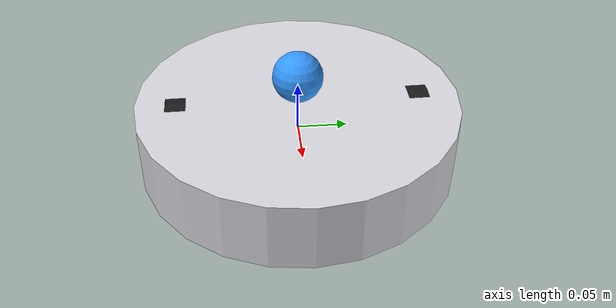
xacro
<?xml version="1.0"?>
<robot xmlns:xacro="http://www.ros.org/wiki/xacro" name="robot_a">
  <xacro:include filename="common_robot.xacro"/>

  <xacro:arg name="prefix" default="robot_a_"/>
  <xacro:property name="prefix" value="$(arg prefix)"/>

  <xacro:roomba_base prefix="${prefix}" chassis_rgba="0.85 0.85 0.88 1"/>

  <!-- Visual marker on top; trash items are red cubes from models/trash. -->
  <link name="${prefix}dropper_link">
    <xacro:sphere_inertial m="0.01" r="0.025"/>
    <visual>
      <geometry><sphere radius="0.025"/></geometry>
      <material name="${prefix}dropper_mat"><color rgba="0.2 0.6 1.0 1"/></material>
    </visual>
  </link>
  <joint name="${prefix}dropper_joint" type="fixed">
    <parent link="${prefix}base_link"/>
    <child link="${prefix}dropper_link"/>
    <origin xyz="0 0 0.06" rpy="0 0 0"/>
  </joint>

  <!-- planar_move: sets model velocity in the plane (wheel friction not required for motion). -->
  <gazebo>
    <plugin name="planar_move_a" filename="libgazebo_ros_planar_move.so">
      <ros>
        <namespace>/robot_a</namespace>
        <qos>
          <topic name="cmd_vel">
            <subscription>
              <reliability>reliable</reliability>
              <history depth="10">keep_last</history>
            </subscription>
          </topic>
        </qos>
      </ros>
      <update_rate>100</update_rate>
      <publish_rate>50</publish_rate>
      <publish_odom>true</publish_odom>
      <publish_odom_tf>true</publish_odom_tf>
      <odometry_frame>robot_a_odom</odometry_frame>
      <robot_base_frame>${prefix}base_link</robot_base_frame>
    </plugin>

    <plugin name="jsp_a" filename="libgazebo_ros_joint_state_publisher.so">
      <ros>
        <namespace>/robot_a</namespace>
        <remapping>~/joint_states:=/robot_a/joint_states</remapping>
      </ros>
      <joint_name>${prefix}left_wheel_joint</joint_name>
      <joint_name>${prefix}right_wheel_joint</joint_name>
      <update_rate>50</update_rate>
    </plugin>
  </gazebo>
</robot>

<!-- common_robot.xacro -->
<robot xmlns:xacro="http://www.ros.org/wiki/xacro">
  <!--
    Common differential-drive base: cylindrical chassis, two driven wheels, one caster.
    Args:
      prefix: unique link/joint prefix, e.g. robot_a_
      chassis_rgba: visual color
  -->
  <xacro:property name="chassis_radius" value="0.16"/>
  <xacro:property name="chassis_height" value="0.07"/>
  <!-- Higher mass reduces "coin on edge" tipping in ODE. -->
  <xacro:property name="chassis_mass" value="4.5"/>
  <xacro:property name="wheel_radius" value="0.036"/>
  <xacro:property name="wheel_width" value="0.02"/>
  <xacro:property name="wheel_mass" value="0.08"/>
  <xacro:property name="wheel_sep" value="0.24"/>
  <xacro:property name="caster_radius" value="0.018"/>
  <xacro:property name="caster_mass" value="0.02"/>

  <xacro:macro name="cylinder_inertial" params="m r h">
    <inertial>
      <mass value="${m}"/>
      <inertia ixx="${m * (3*r*r + h*h) / 12}" ixy="0.0" ixz="0.0"
               iyy="${m * (3*r*r + h*h) / 12}" iyz="0.0"
               izz="${m * r*r / 2}"/>
    </inertial>
  </xacro:macro>

  <xacro:macro name="wheel_inertial" params="m r h">
    <inertial>
      <mass value="${m}"/>
      <inertia ixx="${m * (3*r*r + h*h) / 12}" ixy="0.0" ixz="0.0"
               iyy="${m * (3*r*r + h*h) / 12}" iyz="0.0"
               izz="${m * r*r / 2}"/>
    </inertial>
  </xacro:macro>

  <xacro:macro name="sphere_inertial" params="m r">
    <inertial>
      <mass value="${m}"/>
      <inertia ixx="${0.4*m*r*r}" ixy="0.0" ixz="0.0"
               iyy="${0.4*m*r*r}" iyz="0.0"
               izz="${0.4*m*r*r}"/>
    </inertial>
  </xacro:macro>

  <xacro:macro name="roomba_base" params="prefix chassis_rgba">
    <link name="${prefix}base_link">
      <xacro:cylinder_inertial m="${chassis_mass}" r="${chassis_radius}" h="${chassis_height}"/>
      <visual>
        <origin xyz="0 0 0" rpy="0 0 0"/>
        <geometry>
          <cylinder length="${chassis_height}" radius="${chassis_radius}"/>
        </geometry>
        <material name="${prefix}chassis_mat">
          <color rgba="${chassis_rgba}"/>
        </material>
      </visual>
      <collision>
        <origin xyz="0 0 0" rpy="0 0 0"/>
        <geometry>
          <cylinder length="${chassis_height}" radius="${chassis_radius}"/>
        </geometry>
      </collision>
    </link>

    <!-- Wheels: same convention as libgazebo_ros_diff_drive demo (spin axis matches plugin). -->
    <link name="${prefix}left_wheel_link">
      <xacro:wheel_inertial m="${wheel_mass}" r="${wheel_radius}" h="${wheel_width}"/>
      <visual>
        <origin xyz="0 0 0" rpy="0 0 0"/>
        <geometry>
          <cylinder length="${wheel_width}" radius="${wheel_radius}"/>
        </geometry>
        <material name="${prefix}wheel_mat"><color rgba="0.1 0.1 0.1 1"/></material>
      </visual>
      <collision>
        <origin xyz="0 0 0" rpy="0 0 0"/>
        <geometry>
          <cylinder length="${wheel_width}" radius="${wheel_radius}"/>
        </geometry>
      </collision>
    </link>

    <link name="${prefix}right_wheel_link">
      <xacro:wheel_inertial m="${wheel_mass}" r="${wheel_radius}" h="${wheel_width}"/>
      <visual>
        <origin xyz="0 0 0" rpy="0 0 0"/>
        <geometry>
          <cylinder length="${wheel_width}" radius="${wheel_radius}"/>
        </geometry>
        <material name="${prefix}wheel_mat2"><color rgba="0.1 0.1 0.1 1"/></material>
      </visual>
      <collision>
        <origin xyz="0 0 0" rpy="0 0 0"/>
        <geometry>
          <cylinder length="${wheel_width}" radius="${wheel_radius}"/>
        </geometry>
      </collision>
    </link>

    <link name="${prefix}caster_link">
      <xacro:sphere_inertial m="${caster_mass}" r="${caster_radius}"/>
      <visual>
        <geometry>
          <sphere radius="${caster_radius}"/>
        </geometry>
        <material name="${prefix}caster_mat"><color rgba="0.3 0.3 0.3 1"/></material>
      </visual>
      <collision>
        <geometry>
          <sphere radius="${caster_radius}"/>
        </geometry>
      </collision>
    </link>

    <joint name="${prefix}left_wheel_joint" type="continuous">
      <parent link="${prefix}base_link"/>
      <child link="${prefix}left_wheel_link"/>
      <origin xyz="0 ${wheel_sep/2} ${-chassis_height/2 + wheel_radius}" rpy="-1.57079632679 0 0"/>
      <axis xyz="0 0 1"/>
      <dynamics damping="0.02" friction="0.05"/>
    </joint>

    <joint name="${prefix}right_wheel_joint" type="continuous">
      <parent link="${prefix}base_link"/>
      <child link="${prefix}right_wheel_link"/>
      <origin xyz="0 ${-wheel_sep/2} ${-chassis_height/2 + wheel_radius}" rpy="-1.57079632679 0 0"/>
      <axis xyz="0 0 1"/>
      <dynamics damping="0.02" friction="0.05"/>
    </joint>

    <joint name="${prefix}caster_joint" type="fixed">
      <parent link="${prefix}base_link"/>
      <child link="${prefix}caster_link"/>
      <origin xyz="-${chassis_radius*0.55} 0 ${-chassis_height/2 + wheel_radius - caster_radius}" rpy="0 0 0"/>
    </joint>

    <gazebo reference="${prefix}base_link">
      <material>Gazebo/Grey</material>
      <mu1>0.9</mu1><mu2>0.9</mu2>
    </gazebo>
    <gazebo reference="${prefix}left_wheel_link">
      <material>Gazebo/Black</material>
      <mu1>1.8</mu1><mu2>1.8</mu2>
      <kp>500000.0</kp>
      <kd>20.0</kd>
      <minDepth>0.001</minDepth>
      <maxVel>10.0</maxVel>
    </gazebo>
    <gazebo reference="${prefix}right_wheel_link">
      <material>Gazebo/Black</material>
      <mu1>1.8</mu1><mu2>1.8</mu2>
      <kp>500000.0</kp>
      <kd>20.0</kd>
      <minDepth>0.001</minDepth>
      <maxVel>10.0</maxVel>
    </gazebo>
    <gazebo reference="${prefix}caster_link">
      <material>Gazebo/Black</material>
      <mu1>0.6</mu1><mu2>0.6</mu2>
      <kp>100000.0</kp>
      <kd>10.0</kd>
    </gazebo>
  </xacro:macro>
</robot>
